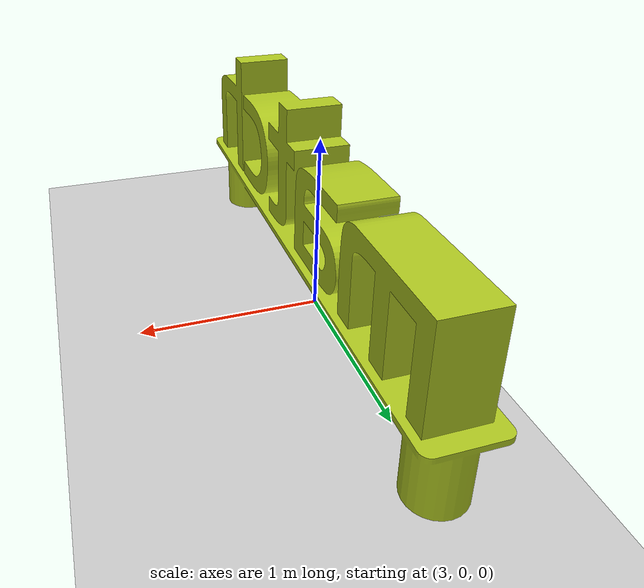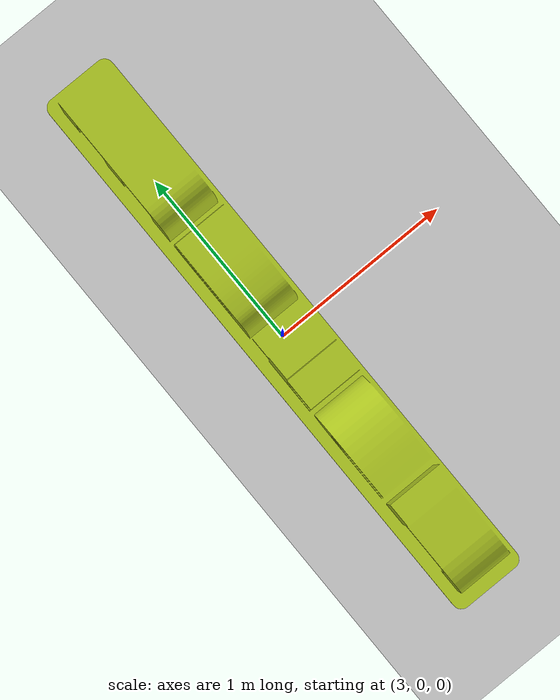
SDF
<?xml version="1.0"?>

<sdf version="1.6">
  <world name="husarion_world">
    <physics name="1ms" type="ignored">
      <max_step_size>0.001</max_step_size>
      <real_time_factor>1.0</real_time_factor>
    </physics>

    <plugin filename="ignition-gazebo-contact-system" name="gz::sim::systems::Contact" />
    <plugin filename="ignition-gazebo-imu-system" name="gz::sim::systems::Imu" />
    <plugin filename="ignition-gazebo-physics-system" name="gz::sim::systems::Physics" />
    <plugin filename="ignition-gazebo-scene-broadcaster-system"
      name="gz::sim::systems::SceneBroadcaster" />
    <plugin filename="ignition-gazebo-sensors-system" name="gz::sim::systems::Sensors" />
    <plugin filename="ignition-gazebo-user-commands-system" name="gz::sim::systems::UserCommands" />

    <light type="directional" name="sun">
      <cast_shadows>true</cast_shadows>
      <pose>0 0 10 0 0 0</pose>
      <diffuse>0.8 0.8 0.8 1</diffuse>
      <specular>0.2 0.2 0.2 1</specular>
      <attenuation>
        <range>1000</range>
        <constant>0.9</constant>
        <linear>0.01</linear>
        <quadratic>0.001</quadratic>
      </attenuation>
      <direction>0.5 0.1 -0.9</direction>
    </light>

    <model name="ground_plane">
      <static>true</static>
      <link name="link">
        <collision name="collision">
          <geometry>
            <plane>
              <normal>0 0 1</normal>
              <size>100 100</size>
            </plane>
          </geometry>
        </collision>
        <visual name="visual">
          <geometry>
            <plane>
              <normal>0 0 1</normal>
              <size>100 100</size>
            </plane>
          </geometry>
          <material>
            <ambient>0.8 0.8 0.8 1</ambient>
            <diffuse>0.8 0.8 0.8 1</diffuse>
            <specular>0.8 0.8 0.8 1</specular>
          </material>
        </visual>
      </link>
    </model>

    <model name="match_world">
      <static>true</static>
      <link name="link">
        <pose>0.0 0.0 0 0 0 0.0</pose>
        <visual name="visual">
          <geometry>
            <mesh>
              <uri>meshes/match_empty_world.obj</uri>
              <scale>0.001 0.001 0.001</scale>
            </mesh>
          </geometry>
          <material>
            <ambient>0 0 0 1</ambient>
            <diffuse>0.6941176470588235 0.792156862745098 0.1294117647058823 1</diffuse>
            <specular>0.1 0.1 0.1 1</specular>
            <emissive>0 0 0 0</emissive>
          </material>
        </visual>
        <collision name="visual">
          <geometry>
            <mesh>
              <uri>meshes/match_empty_world.obj</uri>
              <scale>0.001 0.001 0.001</scale>
            </mesh>
          </geometry>
        </collision>
      </link>
    </model>

    <spherical_coordinates>
      <surface_model>EARTH_WGS84</surface_model>
      <world_frame_orientation>ENU</world_frame_orientation>
      <latitude_deg>53.1978</latitude_deg>
      <longitude_deg>18.3732</longitude_deg>
      <elevation>0</elevation>
      <heading_deg>0</heading_deg>
    </spherical_coordinates>
  </world>
</sdf>
